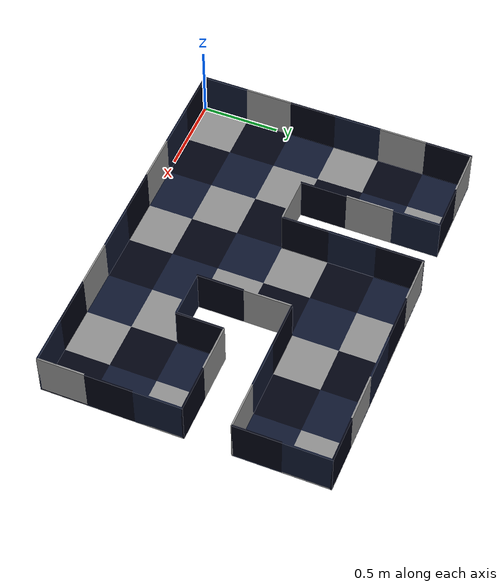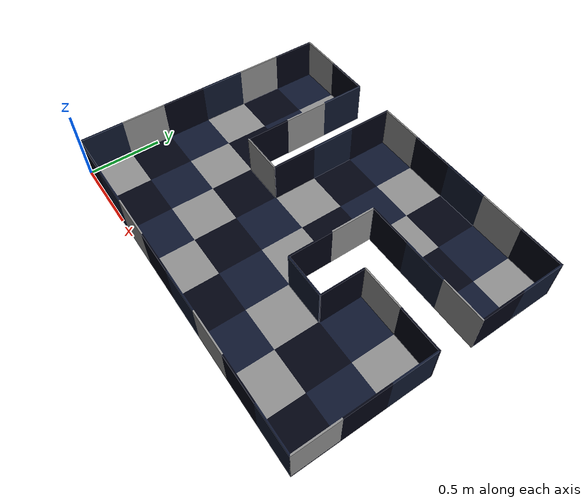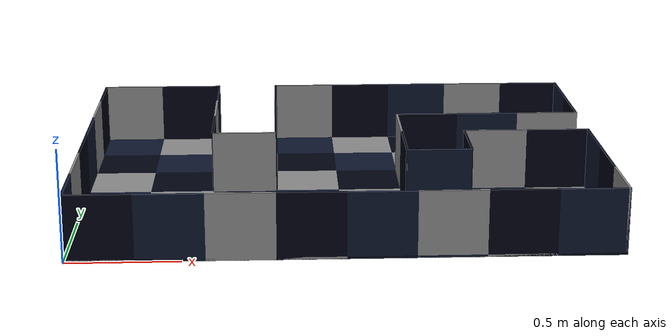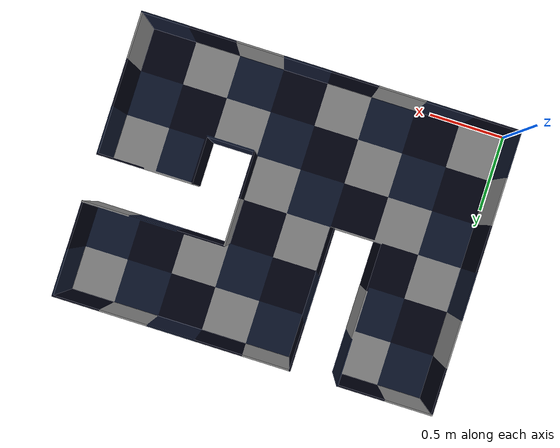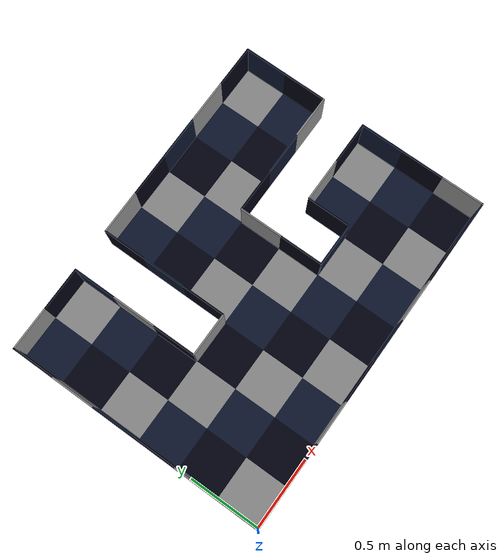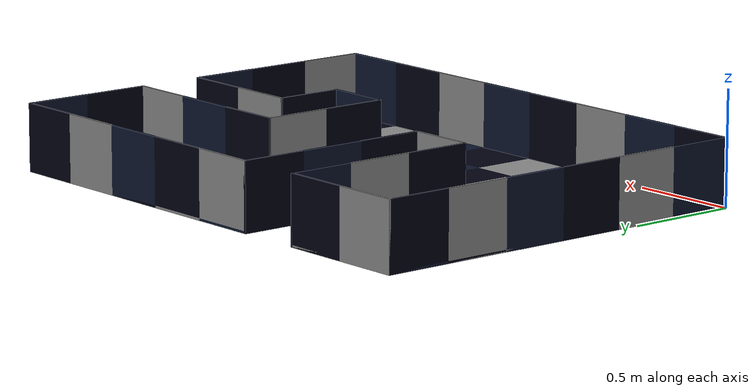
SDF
<sdf version="1.7">
 <world name="default">
  <light name="sun" type="directional">
   <pose>0 0 300 0 -0 0</pose>
   <diffuse>0.8 0.8 0.8 1</diffuse>
   <specular>0.2 0.2 0.2 1</specular>
   <attenuation><range>1000</range><constant>1</constant><linear>0</linear><quadratic>0</quadratic></attenuation>
   <direction>0 1 0</direction>
   <spot><inner_angle>0</inner_angle><outer_angle>0</outer_angle><falloff>0</falloff></spot>
  </light>
  <physics name="default_physics" default="0" type="ode">
   <max_step_size>0.001</max_step_size>
   <real_time_factor>1</real_time_factor>
   <real_time_update_rate>1000</real_time_update_rate>
  </physics>
  <scene><ambient>0.4 0.4 0.4 1</ambient><background>0.7 0.7 0.7 1</background><shadows>1</shadows></scene>
  <spherical_coordinates>
   <surface_model>EARTH_WGS84</surface_model>
   <latitude_deg>0</latitude_deg>
   <longitude_deg>0</longitude_deg>
   <elevation>0</elevation>
   <heading_deg>0</heading_deg>
  </spherical_coordinates>
  <gravity>0 0 -9.81</gravity>
  <magnetic_field>0 0 0</magnetic_field>
  <atmosphere type="adiabatic"/>
  <model name="map">
   <static>1</static>
   <link name="link">
    <collision name="collision"><geometry><mesh><uri>model://JRNC/JRNC2025.dae</uri></mesh></geometry></collision>
    <visual name="visual"><geometry><mesh><uri>model://JRNC/JRNC2025.dae</uri></mesh></geometry></visual>
   </link>
  </model>
  <light name="user_directional_light_0" type="directional">
   <pose>11.043 -0.000552 20.0 0 -0 0</pose>
   <diffuse>0.5 0.5 0.5 1</diffuse>
   <specular>0.1 0.1 0.1 1</specular>
   <direction>0.1 0.1 -0.9</direction>
   <attenuation>
    <range>20</range>
    <constant>0.5</constant>
    <linear>0.01</linear>
    <quadratic>0.001</quadratic>
   </attenuation>
   <spot><inner_angle>0</inner_angle><outer_angle>0</outer_angle><falloff>0</falloff></spot>
  </light>
  <light name="user_directional_light_1" type="directional">
   <pose>11.04 -0.000552 20.0 0 -0 0</pose>
   <diffuse>0.5 0.5 0.5 1</diffuse>
   <specular>0.1 0.1 0.1 1</specular>
   <direction>0.1 0.1 -0.9</direction>
   <attenuation>
    <range>20</range>
    <constant>0.5</constant>
    <linear>0.01</linear>
    <quadratic>0.001</quadratic>
   </attenuation>
   <spot><inner_angle>0</inner_angle><outer_angle>0</outer_angle><falloff>0</falloff></spot>
  </light>
  <light name="user_directional_light_2" type="directional">
   <pose>11.0 -0.000552 20.0 0 -0 0</pose>
   <diffuse>0.5 0.5 0.5 1</diffuse>
   <specular>0.1 0.1 0.1 1</specular>
   <direction>0.1 0.1 -0.9</direction>
   <attenuation>
    <range>20</range>
    <constant>0.5</constant>
    <linear>0.01</linear>
    <quadratic>0.001</quadratic>
   </attenuation>
   <spot><inner_angle>0</inner_angle><outer_angle>0</outer_angle><falloff>0</falloff></spot>
  </light>
  <audio><device>default</device></audio>
  <light name="user_point_light_0" type="point">
   <pose>0.40361 7.18397 1 0 -0 0</pose>
   <diffuse>0.5 0.5 0.5 1</diffuse>
   <specular>0.1 0.1 0.1 1</specular>
   <attenuation>
    <range>20</range>
    <constant>0.5</constant>
    <linear>0.01</linear>
    <quadratic>0.001</quadratic>
   </attenuation>
   <cast_shadows>0</cast_shadows>
   <direction>0 0 -1</direction>
   <spot><inner_angle>0</inner_angle><outer_angle>0</outer_angle><falloff>0</falloff></spot>
  </light>
  <light name="user_point_light_1" type="point">
   <pose>11.6135 7.36858 1 0 -0 0</pose>
   <diffuse>0.5 0.5 0.5 1</diffuse>
   <specular>0.1 0.1 0.1 1</specular>
   <attenuation>
    <range>20</range>
    <constant>0.5</constant>
    <linear>0.01</linear>
    <quadratic>0.001</quadratic>
   </attenuation>
   <cast_shadows>0</cast_shadows>
   <direction>0 0 -1</direction>
   <spot><inner_angle>0</inner_angle><outer_angle>0</outer_angle><falloff>0</falloff></spot>
  </light>
 </world>
</sdf>
